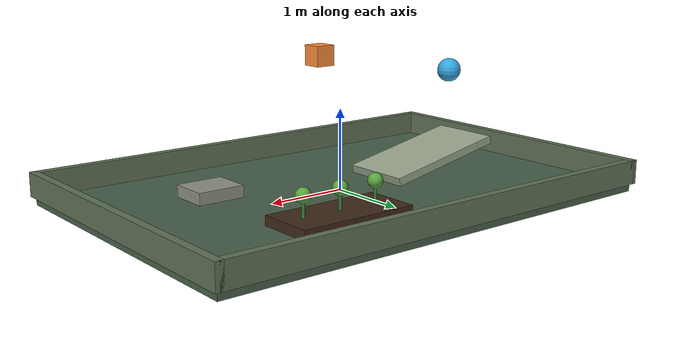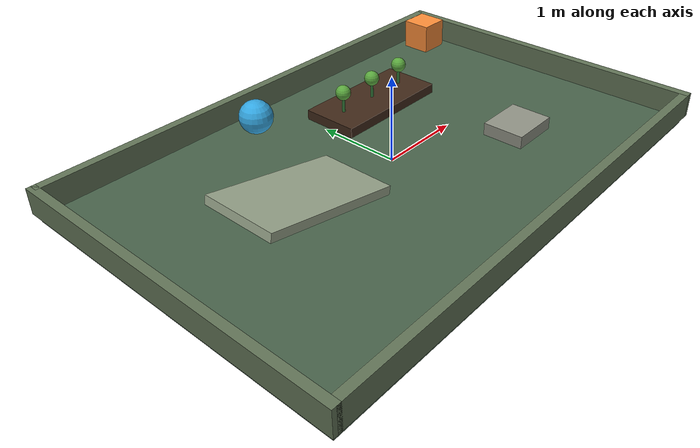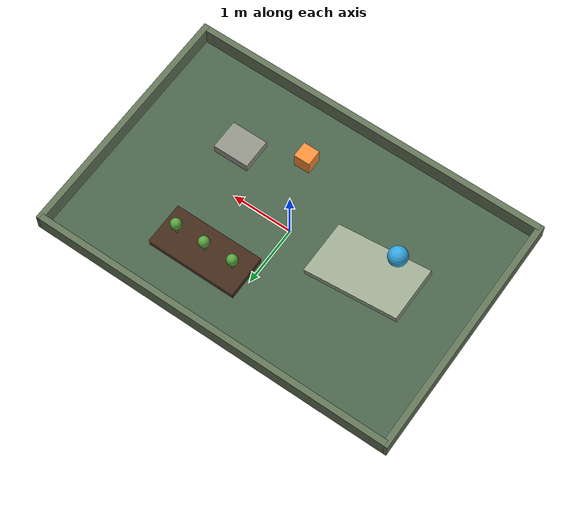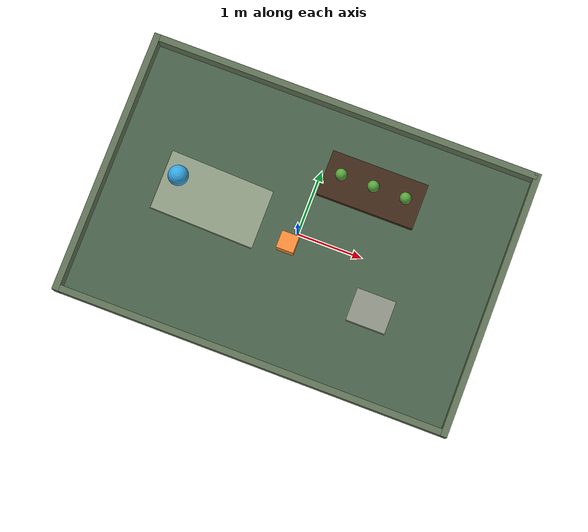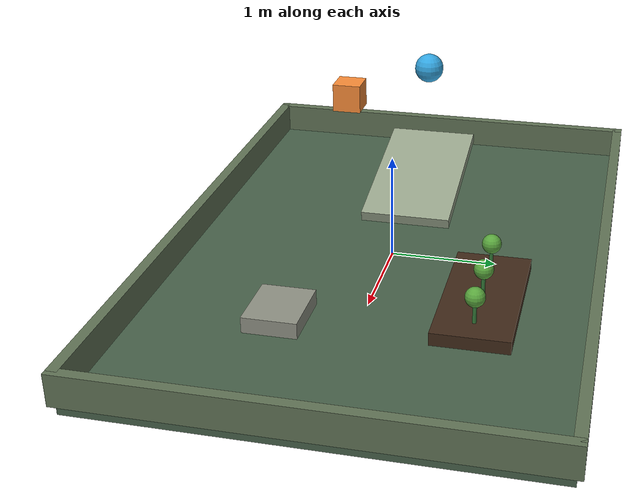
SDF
<?xml version='1.0' encoding='utf-8'?>
<sdf version="1.10">
  <world name="garden_preview">
    <gravity>0 0 -9.81</gravity>
    <physics name="default" type="ignored">
      <max_step_size>0.001</max_step_size>
      <real_time_factor>1</real_time_factor>
    </physics>
    <plugin filename="gz-sim-physics-system" name="gz::sim::systems::Physics" />
    <plugin filename="gz-sim-user-commands-system" name="gz::sim::systems::UserCommands" />
    <plugin filename="gz-sim-scene-broadcaster-system" name="gz::sim::systems::SceneBroadcaster" />
    <light name="sun" type="directional">
      <pose>0 0 10 0 0 0</pose>
      <direction>-0.5 0.3 -1</direction>
      <diffuse>1 1 1 1</diffuse>
    </light>
    <model name="ground">
      <static>true</static>
      <pose>0 0 -0.05 0 0 0</pose>
      <link name="link">
        <collision name="collision">
          <geometry>
            <box>
              <size>6 4 0.1</size>
            </box>
          </geometry>
        </collision>
        <visual name="visual">
          <geometry>
            <box>
              <size>6 4 0.1</size>
            </box>
          </geometry>
          <material>
            <diffuse>0.28 0.38 0.29 1</diffuse>
            <ambient>0.28 0.38 0.29 1</ambient>
          </material>
        </visual>
      </link>
    </model>
    <model name="ramp">
      <static>true</static>
      <pose>-1.35 0 0.25 0 0.2 0</pose>
      <link name="link">
        <collision name="collision">
          <geometry>
            <box>
              <size>1.6 0.9 0.1</size>
            </box>
          </geometry>
        </collision>
        <visual name="visual">
          <geometry>
            <box>
              <size>1.6 0.9 0.1</size>
            </box>
          </geometry>
          <material>
            <diffuse>0.60 0.65 0.55 1</diffuse>
            <ambient>0.60 0.65 0.55 1</ambient>
          </material>
        </visual>
      </link>
    </model>
    <model name="step">
      <static>true</static>
      <pose>1.4 -0.7 0.075 0 0 0</pose>
      <link name="link">
        <collision name="collision">
          <geometry>
            <box>
              <size>0.6 0.5 0.15</size>
            </box>
          </geometry>
        </collision>
        <visual name="visual">
          <geometry>
            <box>
              <size>0.6 0.5 0.15</size>
            </box>
          </geometry>
          <material>
            <diffuse>0.56 0.57 0.52 1</diffuse>
            <ambient>0.56 0.57 0.52 1</ambient>
          </material>
        </visual>
      </link>
    </model>
    <model name="soil">
      <static>true</static>
      <pose>0.8 1 0.06 0 0 0</pose>
      <link name="link">
        <collision name="collision">
          <geometry>
            <box>
              <size>1.5 0.7 0.12</size>
            </box>
          </geometry>
        </collision>
        <visual name="visual">
          <geometry>
            <box>
              <size>1.5 0.7 0.12</size>
            </box>
          </geometry>
          <material>
            <diffuse>0.25 0.16 0.10 1</diffuse>
            <ambient>0.25 0.16 0.10 1</ambient>
          </material>
        </visual>
      </link>
    </model>
    <model name="stem_0">
      <static>true</static>
      <pose>0.3 1 0.24 0 0 0</pose>
      <link name="link">
        <collision name="collision">
          <geometry>
            <cylinder>
              <radius>0.018</radius>
              <length>0.24</length>
            </cylinder>
          </geometry>
        </collision>
        <visual name="visual">
          <geometry>
            <cylinder>
              <radius>0.018</radius>
              <length>0.24</length>
            </cylinder>
          </geometry>
          <material>
            <diffuse>0.20 0.48 0.22 1</diffuse>
            <ambient>0.20 0.48 0.22 1</ambient>
          </material>
        </visual>
      </link>
    </model>
    <model name="leaves_0">
      <static>true</static>
      <pose>0.3 1 0.37 0 0 0</pose>
      <link name="link">
        <collision name="collision">
          <geometry>
            <sphere>
              <radius>0.09</radius>
            </sphere>
          </geometry>
        </collision>
        <visual name="visual">
          <geometry>
            <sphere>
              <radius>0.09</radius>
            </sphere>
          </geometry>
          <material>
            <diffuse>0.35 0.65 0.24 1</diffuse>
            <ambient>0.35 0.65 0.24 1</ambient>
          </material>
        </visual>
      </link>
    </model>
    <model name="stem_1">
      <static>true</static>
      <pose>0.8 1 0.24 0 0 0</pose>
      <link name="link">
        <collision name="collision">
          <geometry>
            <cylinder>
              <radius>0.018</radius>
              <length>0.24</length>
            </cylinder>
          </geometry>
        </collision>
        <visual name="visual">
          <geometry>
            <cylinder>
              <radius>0.018</radius>
              <length>0.24</length>
            </cylinder>
          </geometry>
          <material>
            <diffuse>0.20 0.48 0.22 1</diffuse>
            <ambient>0.20 0.48 0.22 1</ambient>
          </material>
        </visual>
      </link>
    </model>
    <model name="leaves_1">
      <static>true</static>
      <pose>0.8 1 0.37 0 0 0</pose>
      <link name="link">
        <collision name="collision">
          <geometry>
            <sphere>
              <radius>0.09</radius>
            </sphere>
          </geometry>
        </collision>
        <visual name="visual">
          <geometry>
            <sphere>
              <radius>0.09</radius>
            </sphere>
          </geometry>
          <material>
            <diffuse>0.35 0.65 0.24 1</diffuse>
            <ambient>0.35 0.65 0.24 1</ambient>
          </material>
        </visual>
      </link>
    </model>
    <model name="stem_2">
      <static>true</static>
      <pose>1.3 1 0.24 0 0 0</pose>
      <link name="link">
        <collision name="collision">
          <geometry>
            <cylinder>
              <radius>0.018</radius>
              <length>0.24</length>
            </cylinder>
          </geometry>
        </collision>
        <visual name="visual">
          <geometry>
            <cylinder>
              <radius>0.018</radius>
              <length>0.24</length>
            </cylinder>
          </geometry>
          <material>
            <diffuse>0.20 0.48 0.22 1</diffuse>
            <ambient>0.20 0.48 0.22 1</ambient>
          </material>
        </visual>
      </link>
    </model>
    <model name="leaves_2">
      <static>true</static>
      <pose>1.3 1 0.37 0 0 0</pose>
      <link name="link">
        <collision name="collision">
          <geometry>
            <sphere>
              <radius>0.09</radius>
            </sphere>
          </geometry>
        </collision>
        <visual name="visual">
          <geometry>
            <sphere>
              <radius>0.09</radius>
            </sphere>
          </geometry>
          <material>
            <diffuse>0.35 0.65 0.24 1</diffuse>
            <ambient>0.35 0.65 0.24 1</ambient>
          </material>
        </visual>
      </link>
    </model>
    <model name="test_cube">
      <static>false</static>
      <pose>0 -0.4 1.6 0 0 0</pose>
      <link name="link">
        <inertial>
          <mass>1</mass>
          <inertia>
            <ixx>0.010416666666666666</ixx>
            <iyy>0.010416666666666666</iyy>
            <izz>0.010416666666666666</izz>
          </inertia>
        </inertial>
        <collision name="collision">
          <geometry>
            <box>
              <size>0.25 0.25 0.25</size>
            </box>
          </geometry>
        </collision>
        <visual name="visual">
          <geometry>
            <box>
              <size>0.25 0.25 0.25</size>
            </box>
          </geometry>
          <material>
            <diffuse>0.98 0.55 0.22 1</diffuse>
            <ambient>0.98 0.55 0.22 1</ambient>
          </material>
        </visual>
      </link>
      <plugin filename="gz-sim-pose-publisher-system" name="gz::sim::systems::PosePublisher">
        <publish_model_pose>true</publish_model_pose>
        <publish_link_pose>false</publish_link_pose>
        <publish_visual_pose>false</publish_visual_pose>
        <publish_collision_pose>false</publish_collision_pose>
        <publish_sensor_pose>false</publish_sensor_pose>
        <use_pose_vector_msg>true</use_pose_vector_msg>
        <update_frequency>20</update_frequency>
      </plugin>
    </model>
    <model name="test_ball">
      <static>false</static>
      <pose>-1.8 0 1.3 0 0 0</pose>
      <link name="link">
        <inertial>
          <mass>1</mass>
          <inertia>
            <ixx>0.009</ixx>
            <iyy>0.009</iyy>
            <izz>0.009</izz>
          </inertia>
        </inertial>
        <collision name="collision">
          <geometry>
            <sphere>
              <radius>0.15</radius>
            </sphere>
          </geometry>
        </collision>
        <visual name="visual">
          <geometry>
            <sphere>
              <radius>0.15</radius>
            </sphere>
          </geometry>
          <material>
            <diffuse>0.20 0.65 0.88 1</diffuse>
            <ambient>0.20 0.65 0.88 1</ambient>
          </material>
        </visual>
      </link>
      <plugin filename="gz-sim-pose-publisher-system" name="gz::sim::systems::PosePublisher">
        <publish_model_pose>true</publish_model_pose>
        <publish_link_pose>false</publish_link_pose>
        <publish_visual_pose>false</publish_visual_pose>
        <publish_collision_pose>false</publish_collision_pose>
        <publish_sensor_pose>false</publish_sensor_pose>
        <use_pose_vector_msg>true</use_pose_vector_msg>
        <update_frequency>20</update_frequency>
      </plugin>
    </model>
    <model name="edge_e">
      <static>true</static>
      <pose>3 0 0.15 0 0 0</pose>
      <link name="link">
        <collision name="collision">
          <geometry>
            <box>
              <size>0.1 4.1 0.3</size>
            </box>
          </geometry>
        </collision>
        <visual name="visual">
          <geometry>
            <box>
              <size>0.1 4.1 0.3</size>
            </box>
          </geometry>
          <material>
            <diffuse>0.38 0.45 0.34 1</diffuse>
          </material>
        </visual>
      </link>
    </model>
    <model name="edge_w">
      <static>true</static>
      <pose>-3 0 0.15 0 0 0</pose>
      <link name="link">
        <collision name="collision">
          <geometry>
            <box>
              <size>0.1 4.1 0.3</size>
            </box>
          </geometry>
        </collision>
        <visual name="visual">
          <geometry>
            <box>
              <size>0.1 4.1 0.3</size>
            </box>
          </geometry>
          <material>
            <diffuse>0.38 0.45 0.34 1</diffuse>
          </material>
        </visual>
      </link>
    </model>
    <model name="edge_n">
      <static>true</static>
      <pose>0 2 0.15 0 0 0</pose>
      <link name="link">
        <collision name="collision">
          <geometry>
            <box>
              <size>6 0.1 0.3</size>
            </box>
          </geometry>
        </collision>
        <visual name="visual">
          <geometry>
            <box>
              <size>6 0.1 0.3</size>
            </box>
          </geometry>
          <material>
            <diffuse>0.38 0.45 0.34 1</diffuse>
          </material>
        </visual>
      </link>
    </model>
    <model name="edge_s">
      <static>true</static>
      <pose>0 -2 0.15 0 0 0</pose>
      <link name="link">
        <collision name="collision">
          <geometry>
            <box>
              <size>6 0.1 0.3</size>
            </box>
          </geometry>
        </collision>
        <visual name="visual">
          <geometry>
            <box>
              <size>6 0.1 0.3</size>
            </box>
          </geometry>
          <material>
            <diffuse>0.38 0.45 0.34 1</diffuse>
          </material>
        </visual>
      </link>
    </model>
  </world>
</sdf>
